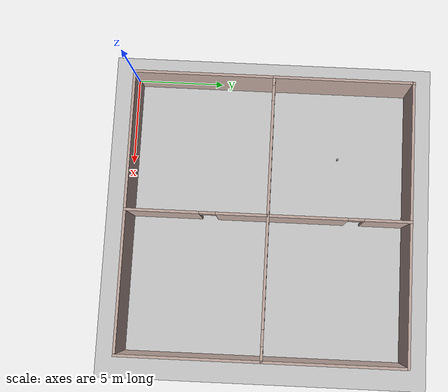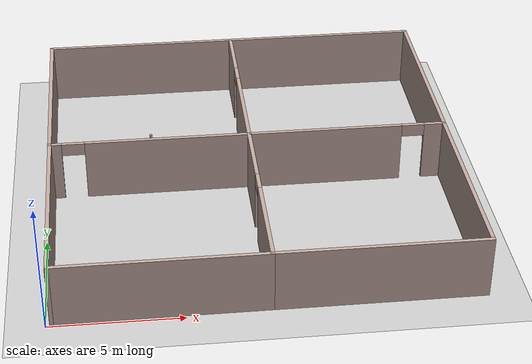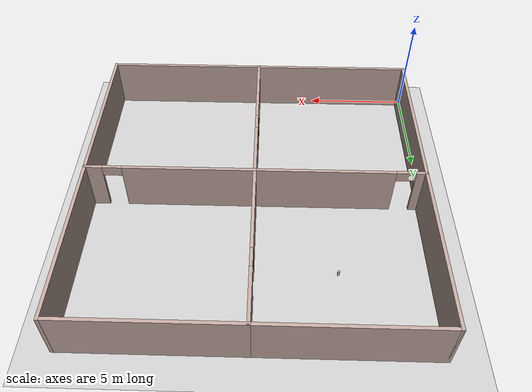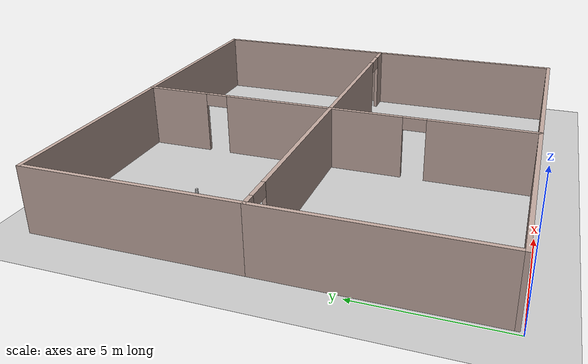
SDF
<sdf version="1.7">
 <world name="default">
  <light name="sun" type="directional">
   <pose>0 0 10 0 -0 0</pose>
   <diffuse>0.8 0.8 0.8 1</diffuse>
   <specular>0.2 0.2 0.2 1</specular>
   <attenuation>
    <range>1000</range>
    <constant>0.9</constant>
    <linear>0.01</linear>
    <quadratic>0.001</quadratic>
   </attenuation>
   <direction>-0.5 0.1 -0.9</direction>
   <spot><inner_angle>0</inner_angle><outer_angle>0</outer_angle><falloff>0</falloff></spot>
  </light>
  <model name="ground_plane">
   <static>1</static>
   <link name="link">
    <collision name="collision">
     <geometry><plane><normal>0 0 1</normal><size>100 100</size></plane></geometry>
     <surface><friction><ode><mu>100</mu><mu2>50</mu2></ode></friction></surface>
    </collision>
    <visual name="visual">
     <cast_shadows>0</cast_shadows>
     <geometry><plane><normal>0 0 1</normal><size>100 100</size></plane></geometry>
     <material>
      <script><uri>file://media/materials/scripts/gazebo.material</uri><name>Gazebo/Grey</name></script>
     </material>
    </visual>
   </link>
  </model>
  <gravity>0 0 -9.8</gravity>
  <magnetic_field>6e-06 2.3e-05 -4.2e-05</magnetic_field>
  <atmosphere type="adiabatic"/>
  <physics type="ode">
   <max_step_size>0.001</max_step_size>
   <real_time_factor>1</real_time_factor>
   <real_time_update_rate>1000</real_time_update_rate>
  </physics>
  <scene><ambient>0.4 0.4 0.4 1</ambient><background>0.7 0.7 0.7 1</background><shadows>1</shadows></scene>
  <audio><device>default</device></audio>
  <spherical_coordinates>
   <surface_model>EARTH_WGS84</surface_model>
   <latitude_deg>0</latitude_deg>
   <longitude_deg>0</longitude_deg>
   <elevation>0</elevation>
   <heading_deg>0</heading_deg>
  </spherical_coordinates>
  <model name="plane_2">
   <pose>8.06755 8.03884 0 0 -0 0</pose>
   <link name="Wall_10">
    <pose>-3.925 0 0 0 -0 0</pose>
    <visual name="Wall_10_Visual_0">
     <pose>-3.73035 0 1.25 0 -0 0</pose>
     <geometry><box><size>0.539304 0.15 2.5</size></box></geometry>
     <material>
      <script><uri>file://media/materials/scripts/gazebo.material</uri><name>Gazebo/Grey</name></script>
      <ambient>0.760784 0.662745 0.627451 1</ambient>
     </material>
     <meta><layer>0</layer></meta>
    </visual>
    <collision name="Wall_10_Collision_0">
     <geometry><box><size>0.539304 0.15 2.5</size></box></geometry>
     <pose>-3.73035 0 1.25 0 -0 0</pose>
    </collision>
    <visual name="Wall_10_Visual_1">
     <pose>0.719652 0 1.25 0 -0 0</pose>
     <geometry><box><size>6.5607 0.15 2.5</size></box></geometry>
     <material>
      <script><uri>file://media/materials/scripts/gazebo.material</uri><name>Gazebo/Grey</name></script>
      <ambient>0.760784 0.662745 0.627451 1</ambient>
     </material>
     <meta><layer>0</layer></meta>
    </visual>
    <collision name="Wall_10_Collision_1">
     <geometry><box><size>6.5607 0.15 2.5</size></box></geometry>
     <pose>0.719652 0 1.25 0 -0 0</pose>
    </collision>
    <visual name="Wall_10_Visual_2">
     <pose>-3.0107 0 2.25 0 -0 0</pose>
     <geometry><box><size>0.9 0.15 0.5</size></box></geometry>
     <material>
      <script><uri>file://media/materials/scripts/gazebo.material</uri><name>Gazebo/Grey</name></script>
      <ambient>0.760784 0.662745 0.627451 1</ambient>
     </material>
     <meta><layer>0</layer></meta>
    </visual>
    <collision name="Wall_10_Collision_2">
     <geometry><box><size>0.9 0.15 0.5</size></box></geometry>
     <pose>-3.0107 0 2.25 0 -0 0</pose>
    </collision>
   </link>
   <link name="Wall_11">
    <pose>-0 -3.925 0 0 -0 -1.5708</pose>
    <visual name="Wall_11_Visual_0">
     <pose>-2.52544 0 1.25 0 -0 0</pose>
     <geometry><box><size>2.94912 0.15 2.5</size></box></geometry>
     <material>
      <script><uri>file://media/materials/scripts/gazebo.material</uri><name>Gazebo/Grey</name></script>
      <ambient>0.760784 0.662745 0.627451 1</ambient>
     </material>
     <meta><layer>0</layer></meta>
    </visual>
    <collision name="Wall_11_Collision_0">
     <geometry><box><size>2.94912 0.15 2.5</size></box></geometry>
     <pose>-2.52544 0 1.25 0 -0 0</pose>
    </collision>
    <visual name="Wall_11_Visual_1">
     <pose>1.92456 0 1.25 0 -0 0</pose>
     <geometry><box><size>4.15088 0.15 2.5</size></box></geometry>
     <material>
      <script><uri>file://media/materials/scripts/gazebo.material</uri><name>Gazebo/Grey</name></script>
      <ambient>0.760784 0.662745 0.627451 1</ambient>
     </material>
     <meta><layer>0</layer></meta>
    </visual>
    <collision name="Wall_11_Collision_1">
     <geometry><box><size>4.15088 0.15 2.5</size></box></geometry>
     <pose>1.92456 0 1.25 0 -0 0</pose>
    </collision>
    <visual name="Wall_11_Visual_2">
     <pose>-0.600877 0 2.25 0 -0 0</pose>
     <geometry><box><size>0.9 0.15 0.5</size></box></geometry>
     <material>
      <script><uri>file://media/materials/scripts/gazebo.material</uri><name>Gazebo/Grey</name></script>
      <ambient>0.760784 0.662745 0.627451 1</ambient>
     </material>
     <meta><layer>0</layer></meta>
    </visual>
    <collision name="Wall_11_Collision_2">
     <geometry><box><size>0.9 0.15 0.5</size></box></geometry>
     <pose>-0.600877 0 2.25 0 -0 0</pose>
    </collision>
   </link>
   <link name="Wall_12">
    <collision name="Wall_12_Collision">
     <geometry><box><size>8 0.15 2.5</size></box></geometry>
     <pose>0 0 1.25 0 -0 0</pose>
    </collision>
    <visual name="Wall_12_Visual">
     <pose>0 0 1.25 0 -0 0</pose>
     <geometry><box><size>8 0.15 2.5</size></box></geometry>
     <material>
      <script><uri>file://media/materials/scripts/gazebo.material</uri><name>Gazebo/Grey</name></script>
      <ambient>0.760784 0.662745 0.627451 1</ambient>
     </material>
     <meta><layer>0</layer></meta>
    </visual>
    <pose>-3.925 -7.85 0 0 -0 3.14159</pose>
   </link>
   <link name="Wall_15">
    <pose>3.925 0 0 0 -0 0</pose>
    <visual name="Wall_15_Visual_0">
     <pose>-0.892945 0 1.25 0 -0 0</pose>
     <geometry><box><size>6.21411 0.15 2.5</size></box></geometry>
     <material>
      <script><uri>file://media/materials/scripts/gazebo.material</uri><name>Gazebo/Grey</name></script>
      <ambient>0.760784 0.662745 0.627451 1</ambient>
     </material>
     <meta><layer>0</layer></meta>
    </visual>
    <collision name="Wall_15_Collision_0">
     <geometry><box><size>6.21411 0.15 2.5</size></box></geometry>
     <pose>-0.892945 0 1.25 0 -0 0</pose>
    </collision>
    <visual name="Wall_15_Visual_1">
     <pose>3.55706 0 1.25 0 -0 0</pose>
     <geometry><box><size>0.885891 0.15 2.5</size></box></geometry>
     <material>
      <script><uri>file://media/materials/scripts/gazebo.material</uri><name>Gazebo/Grey</name></script>
      <ambient>0.760784 0.662745 0.627451 1</ambient>
     </material>
     <meta><layer>0</layer></meta>
    </visual>
    <collision name="Wall_15_Collision_1">
     <geometry><box><size>0.885891 0.15 2.5</size></box></geometry>
     <pose>3.55706 0 1.25 0 -0 0</pose>
    </collision>
    <visual name="Wall_15_Visual_2">
     <pose>2.66411 0 2.25 0 -0 0</pose>
     <geometry><box><size>0.9 0.15 0.5</size></box></geometry>
     <material>
      <script><uri>file://media/materials/scripts/gazebo.material</uri><name>Gazebo/Grey</name></script>
      <ambient>0.760784 0.662745 0.627451 1</ambient>
     </material>
     <meta><layer>0</layer></meta>
    </visual>
    <collision name="Wall_15_Collision_2">
     <geometry><box><size>0.9 0.15 0.5</size></box></geometry>
     <pose>2.66411 0 2.25 0 -0 0</pose>
    </collision>
   </link>
   <link name="Wall_16">
    <collision name="Wall_16_Collision">
     <geometry><box><size>8 0.15 2.5</size></box></geometry>
     <pose>0 0 1.25 0 -0 0</pose>
    </collision>
    <visual name="Wall_16_Visual">
     <pose>0 0 1.25 0 -0 0</pose>
     <geometry><box><size>8 0.15 2.5</size></box></geometry>
     <material>
      <script><uri>file://media/materials/scripts/gazebo.material</uri><name>Gazebo/Grey</name></script>
      <ambient>0.760784 0.662745 0.627451 1</ambient>
     </material>
     <meta><layer>0</layer></meta>
    </visual>
    <pose>7.85 -3.925 0 0 -0 -1.5708</pose>
   </link>
   <link name="Wall_17">
    <collision name="Wall_17_Collision">
     <geometry><box><size>8 0.15 2.5</size></box></geometry>
     <pose>0 0 1.25 0 -0 0</pose>
    </collision>
    <visual name="Wall_17_Visual">
     <pose>0 0 1.25 0 -0 0</pose>
     <geometry><box><size>8 0.15 2.5</size></box></geometry>
     <material>
      <script><uri>file://media/materials/scripts/gazebo.material</uri><name>Gazebo/Grey</name></script>
      <ambient>0.760784 0.662745 0.627451 1</ambient>
     </material>
     <meta><layer>0</layer></meta>
    </visual>
    <pose>3.925 -7.85 0 0 -0 3.14159</pose>
   </link>
   <link name="Wall_26">
    <collision name="Wall_26_Collision">
     <geometry><box><size>8 0.15 2.5</size></box></geometry>
     <pose>0 0 1.25 0 -0 0</pose>
    </collision>
    <visual name="Wall_26_Visual">
     <pose>0 0 1.25 0 -0 0</pose>
     <geometry><box><size>8 0.15 2.5</size></box></geometry>
     <material>
      <script><uri>file://media/materials/scripts/gazebo.material</uri><name>Gazebo/Grey</name></script>
      <ambient>0.760784 0.662745 0.627451 1</ambient>
     </material>
     <meta><layer>0</layer></meta>
    </visual>
    <pose>-7.85 3.925 0 0 -0 1.5708</pose>
   </link>
   <link name="Wall_27">
    <collision name="Wall_27_Collision">
     <geometry><box><size>8 0.15 2.5</size></box></geometry>
     <pose>0 0 1.25 0 -0 0</pose>
    </collision>
    <visual name="Wall_27_Visual">
     <pose>0 0 1.25 0 -0 0</pose>
     <geometry><box><size>8 0.15 2.5</size></box></geometry>
     <material>
      <script><uri>file://media/materials/scripts/gazebo.material</uri><name>Gazebo/Grey</name></script>
      <ambient>0.760784 0.662745 0.627451 1</ambient>
     </material>
     <meta><layer>0</layer></meta>
    </visual>
    <pose>-3.925 7.85 0 0 -0 0</pose>
   </link>
   <link name="Wall_28">
    <pose>-0 3.925 0 0 -0 -1.5708</pose>
    <visual name="Wall_28_Visual_0">
     <pose>-2.68769 0 1.25 0 -0 0</pose>
     <geometry><box><size>2.62462 0.15 2.5</size></box></geometry>
     <material>
      <script><uri>file://media/materials/scripts/gazebo.material</uri><name>Gazebo/Grey</name></script>
      <ambient>0.760784 0.662745 0.627451 1</ambient>
     </material>
     <meta><layer>0</layer></meta>
    </visual>
    <collision name="Wall_28_Collision_0">
     <geometry><box><size>2.62462 0.15 2.5</size></box></geometry>
     <pose>-2.68769 0 1.25 0 -0 0</pose>
    </collision>
    <visual name="Wall_28_Visual_1">
     <pose>1.76231 0 1.25 0 -0 0</pose>
     <geometry><box><size>4.47538 0.15 2.5</size></box></geometry>
     <material>
      <script><uri>file://media/materials/scripts/gazebo.material</uri><name>Gazebo/Grey</name></script>
      <ambient>0.760784 0.662745 0.627451 1</ambient>
     </material>
     <meta><layer>0</layer></meta>
    </visual>
    <collision name="Wall_28_Collision_1">
     <geometry><box><size>4.47538 0.15 2.5</size></box></geometry>
     <pose>1.76231 0 1.25 0 -0 0</pose>
    </collision>
    <visual name="Wall_28_Visual_2">
     <pose>-0.925382 0 2.25 0 -0 0</pose>
     <geometry><box><size>0.9 0.15 0.5</size></box></geometry>
     <material>
      <script><uri>file://media/materials/scripts/gazebo.material</uri><name>Gazebo/Grey</name></script>
      <ambient>0.760784 0.662745 0.627451 1</ambient>
     </material>
     <meta><layer>0</layer></meta>
    </visual>
    <collision name="Wall_28_Collision_2">
     <geometry><box><size>0.9 0.15 0.5</size></box></geometry>
     <pose>-0.925382 0 2.25 0 -0 0</pose>
    </collision>
   </link>
   <link name="Wall_30">
    <collision name="Wall_30_Collision">
     <geometry><box><size>8 0.15 2.5</size></box></geometry>
     <pose>0 0 1.25 0 -0 0</pose>
    </collision>
    <visual name="Wall_30_Visual">
     <pose>0 0 1.25 0 -0 0</pose>
     <geometry><box><size>8 0.15 2.5</size></box></geometry>
     <material>
      <script><uri>file://media/materials/scripts/gazebo.material</uri><name>Gazebo/Grey</name></script>
      <ambient>0.760784 0.662745 0.627451 1</ambient>
     </material>
     <meta><layer>0</layer></meta>
    </visual>
    <pose>7.85 3.925 0 0 -0 1.5708</pose>
   </link>
   <link name="Wall_31">
    <collision name="Wall_31_Collision">
     <geometry><box><size>8 0.15 2.5</size></box></geometry>
     <pose>0 0 1.25 0 -0 0</pose>
    </collision>
    <visual name="Wall_31_Visual">
     <pose>0 0 1.25 0 -0 0</pose>
     <geometry><box><size>8 0.15 2.5</size></box></geometry>
     <material>
      <script><uri>file://media/materials/scripts/gazebo.material</uri><name>Gazebo/Grey</name></script>
      <ambient>0.760784 0.662745 0.627451 1</ambient>
     </material>
     <meta><layer>0</layer></meta>
    </visual>
    <pose>3.925 7.85 0 0 -0 3.14159</pose>
   </link>
   <link name="Wall_9">
    <collision name="Wall_9_Collision">
     <geometry><box><size>8 0.15 2.5</size></box></geometry>
     <pose>0 0 1.25 0 -0 0</pose>
    </collision>
    <visual name="Wall_9_Visual">
     <pose>0 0 1.25 0 -0 0</pose>
     <geometry><box><size>8 0.15 2.5</size></box></geometry>
     <material>
      <script><uri>file://media/materials/scripts/gazebo.material</uri><name>Gazebo/Grey</name></script>
      <ambient>0.760784 0.662745 0.627451 1</ambient>
     </material>
     <meta><layer>0</layer></meta>
    </visual>
    <pose>-7.85 -3.925 0 0 -0 1.5708</pose>
   </link>
   <static>1</static>
  </model>
  <model name="beer">
   <link name="link">
    <pose>0 0 0.115 0 -0 0</pose>
    <inertial>
     <mass>0.39</mass>
     <inertia><ixx>0.00058</ixx><ixy>0</ixy><ixz>0</ixz><iyy>0.00058</iyy><iyz>0</iyz><izz>0.00019</izz></inertia>
    </inertial>
    <collision name="collision">
     <geometry><cylinder><radius>0.055</radius><length>0.23</length></cylinder></geometry>
    </collision>
    <visual name="visual">
     <geometry><cylinder><radius>0.055</radius><length>0.23</length></cylinder></geometry>
     <material>
      <script>
       <uri>model://beer/materials/scripts</uri>
       <uri>model://beer/materials/textures</uri>
       <name>Beer/Diffuse</name>
      </script>
     </material>
    </visual>
   </link>
   <pose>4.27424 11.9649 -2e-06 1e-06 -0 -1e-06</pose>
  </model>
 </world>
</sdf>
